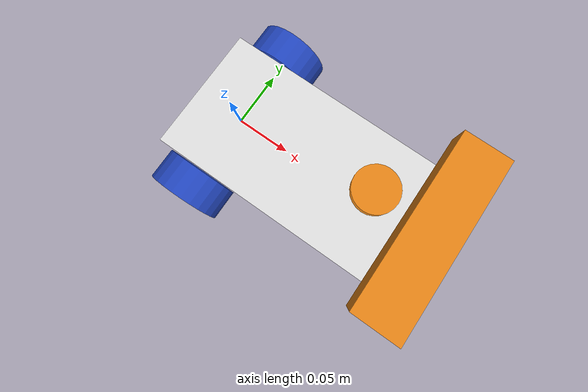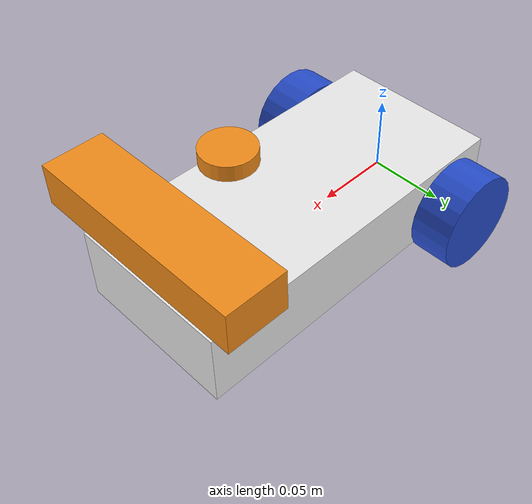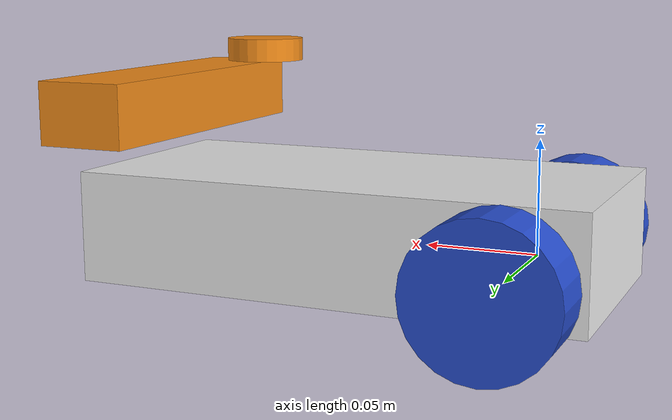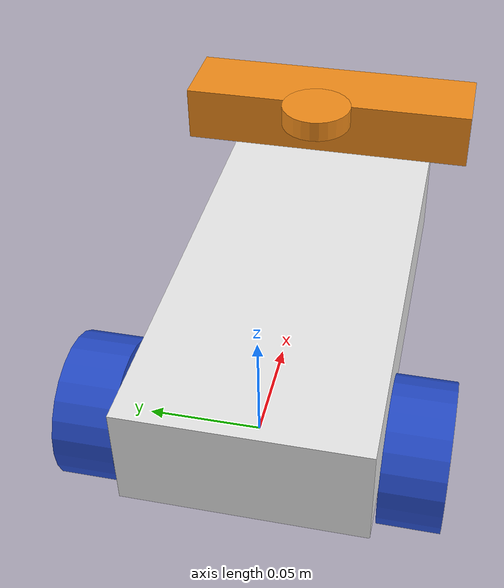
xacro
<?xml version="1.0"?>
<robot xmlns:xacro="http://www.ros.org/wiki/xacro" name="robot">

    <xacro:arg name="use_sim_time" default="true"/>
    <xacro:arg name="use_ros2_control" default="true"/>

    <xacro:include filename="robot_core.xacro" />

    <xacro:if value="$(arg use_ros2_control)">
        <xacro:include filename="ros2_control.xacro" />
    </xacro:if>
    <xacro:unless value="$(arg use_ros2_control)">
        <xacro:include filename="gazebo_control.xacro" />
    </xacro:unless>

    <xacro:if value="$(arg use_sim_time)">
        <xacro:include filename="gazebo_p3d.xacro" />
    </xacro:if>

    <xacro:include filename="lidar.xacro"/>
    <xacro:include filename="depth_camera.xacro"/>
</robot>

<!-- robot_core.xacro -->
<robot xmlns:xacro="http://www.ros.org/wiki/xacro">

    <xacro:include filename="material.xacro"/>
    <xacro:include filename="inertial_macros.xacro"/>

    <link name="base_link">
    </link>

    <joint name="chassis_joint" type="fixed">
        <parent link="base_link"/>
        <child link="chassis"/>
        <origin xyz="0.0 0.0 0.0" rpy="0.0 0.0 0.0"/>

    </joint>

    <link name="chassis">
        <visual>
            <origin xyz="0.08 0 0.007"/>
            <geometry>
                <box size="0.23 0.11 0.05"/>
            </geometry>
            <material name="white"/>
        </visual>
        <collision>
            <origin xyz="0.08 0 0.007"/>
            <geometry>
                <box size="0.23 0.11 0.05"/>
            </geometry>
        </collision>
        <xacro:inertial_box mass="2" x="0.23" y="0.11" z="0.05">
            <origin xyz="0.08 0 0.007" rpy="0 0 0"/>
        </xacro:inertial_box>
    </link>

    <gazebo reference='chassis'>
        <material>
            Gazebo/white
        </material>
    </gazebo>

    <joint name="left_wheel_joint" type="continuous">
        <parent link="base_link"/>
        <child link="left_wheel"/>
        <origin xyz="0 0.07 0" rpy="-${pi/2} 0 0" />
        <axis xyz="0 0 1"/>
    </joint>

    <link name="left_wheel">
        <visual>
            <geometry>
                <cylinder radius="0.0325" length="0.027"/>
            </geometry>
            <material name="blue"/>
        </visual>
        <collision>
            <geometry>
                <cylinder radius="0.0325" length="0.027"/>
            </geometry>
        </collision>
        <xacro:inertial_cylinder mass="0.1" length="0.027" radius="0.0325">
            <origin xyz="0 0 0" rpy="0 0 0"/>
        </xacro:inertial_cylinder>
    </link>

    <gazebo reference='left_wheel'>
        <material>
            Gazebo/Blue
        </material>
    </gazebo>

    <joint name="right_wheel_joint" type="continuous">
        <parent link="base_link"/>
        <child link="right_wheel"/>
        <origin xyz="0 -0.07 0" rpy="${pi/2} 0 0" />
        <axis xyz="0 0 -1"/>
    </joint>

    <link name="right_wheel">
        <visual>
            <geometry>
                <cylinder radius="0.0325" length="0.027"/>
            </geometry>
            <material name="blue"/>
        </visual>
        <collision>
            <geometry>
                <cylinder radius="0.0325" length="0.027"/>
            </geometry>
        </collision>
        <xacro:inertial_cylinder mass="0.1" length="0.027" radius="0.0325">
            <origin xyz="0 0 0" rpy="0 0 0"/>
        </xacro:inertial_cylinder>
    </link>

    <gazebo reference='right_wheel'>
        <material>
            Gazebo/Blue
        </material>
    </gazebo>

    <joint name="caster_wheel_joint" type="fixed">
        <parent link="chassis"/>
        <child link="caster_wheel"/>
        <origin xyz="0.135 0 -0.0255"/>
    </joint>

    <link name="caster_wheel">
        <visual>
            <geometry>
                <sphere radius="0.00725"/>
            </geometry>
            <material name="white"/>
        </visual>
        <collision>
            <geometry>
                <sphere radius="0.00725"/>
            </geometry>
        </collision>
        <xacro:inertial_sphere mass="0.1" radius="0.00725">
            <origin xyz="0 0 0" rpy="0 0 0"/>
        </xacro:inertial_sphere>
    </link>

    <gazebo reference='caster_wheel'>
        <material>
            Gazebo/white
        </material>
        <mu1 value="0.0001"/>
        <mu2 value="0.0001"/>
    </gazebo>

</robot>

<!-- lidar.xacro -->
<robot xmlns:xacro="http://www.ros.org/wiki/xacro">
    <joint name="laser_joint" type="fixed">
        <parent link="base_link"/>
        <child link="laser_frame"/>
        <origin xyz="0.13 0.0 0.085" rpy="0.0 0.0 0.0"/>
    </joint>

    <link name="laser_frame">
        <visual>
            <geometry>
                <cylinder radius="0.017" length="0.010"/>
            </geometry>
            <material name="orange"/>
        </visual>
        <collision>
            <geometry>
                <cylinder radius="0.017" length="0.010"/>
            </geometry>
        </collision>
        <xacro:inertial_cylinder mass="0.01" length="0.010" radius="0.017">
            <origin xyz="0 0 0" rpy="0 0 0"/>
        </xacro:inertial_cylinder>
    </link>

    <gazebo reference='laser_frame'>
        <material>
            Gazebo/Orange
        </material>
    </gazebo>

    <gazebo reference="laser_frame">
        <sensor name="laser" type="ray">
        <pose> 0 0 0 0 0 0 </pose>
        <visualize>false</visualize>
        <update_rate>10</update_rate>
        <ray>
            <scan>
                <horizontal>
                    <samples>360</samples>
                    <min_angle>-3.1415926</min_angle>
                    <max_angle>3.1415926</max_angle>
                </horizontal>
            </scan>
            <range>
                <min>0.3</min>
                <max>12</max>
            </range>
        </ray>
        <plugin name="laser_controller" filename="libgazebo_ros_ray_sensor.so">
            <ros>
                <argument>--ros-args -r ~/out:=scan</argument>
            </ros>
            <output_type>sensor_msgs/LaserScan</output_type>
            <frame_name>laser_frame</frame_name>
        </plugin>
        </sensor>

    </gazebo>
</robot>

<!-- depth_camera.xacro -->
<robot xmlns:xacro="http://www.ros.org/wiki/xacro">
    <joint name="camera_joint" type="fixed">
        <parent link="base_link"/>
        <child link="camera_link"/>
        <origin xyz="0.18 0.0 0.06" rpy="0.0 0.0 0.0"/>
    </joint>

    <link name="camera_link">
        <visual>
            <geometry>
                <box size="0.04 0.15 0.028"/>
            </geometry>
            <material name="orange"/>
        </visual>
        <collision>
            <geometry>
                <box size="0.04 0.17 0.028"/>
            </geometry>
        </collision>
        <xacro:inertial_box mass="0.1" x="0.04" y="0.17" z="0.028">
            <origin xyz="0 0 0" rpy="0 0 0"/>
        </xacro:inertial_box>
    </link>

    <joint name="camera_optical_joint" type="fixed">
        <parent link="camera_link"/>
        <child link="camera_link_optical"/>
        <origin xyz="0 0 0" rpy="${-pi/2} 0 ${-pi/2}"/>
    </joint>

    <link name="camera_link_optical"></link>

    <gazebo reference='camera_link'>
        <material>
            Gazebo/Orange
        </material>
    </gazebo>

    <gazebo reference="camera_link">
        <sensor name="camera" type="depth">
            <pose> 0 0 0 0 0 0 </pose>
            <visualize>true</visualize>
            <update_rate>10</update_rate>
            <camera>
                <horizontal_fov>1.019</horizontal_fov>
                <image>
                    <format>B8G8R8</format>
                    <width>640</width>
                    <height>480</height>
                </image>
                <clip>
                    <near>0.05</near>
                    <far>8.0</far>
                </clip>
            </camera>
            <plugin name="camera_controller" filename="libgazebo_ros_camera.so">
                <frame_name>camera_link_optical</frame_name>
                <min_depth>0.1</min_depth>
                <max_depth>100.0</max_depth>
            </plugin>
        </sensor>
    </gazebo>

</robot>
